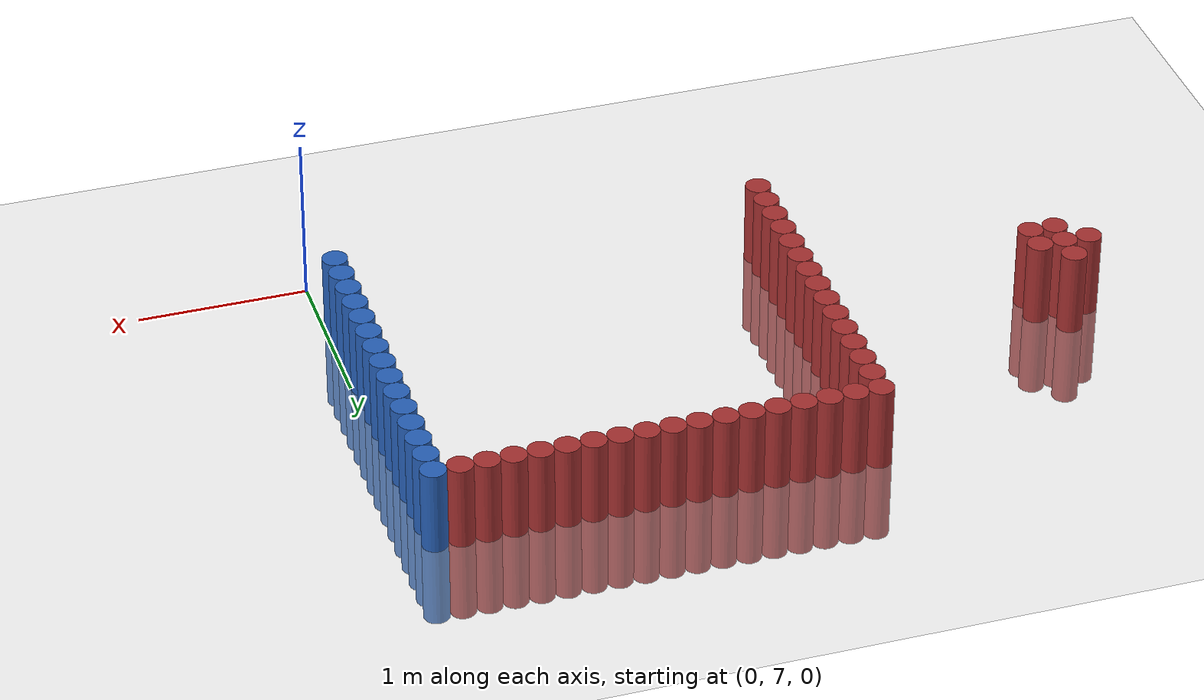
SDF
<sdf version="1.6">
 <world name="default">
  <model name="ground_plane">
   <static>1</static>
   <link name="link">
    <collision name="collision">
     <geometry><plane><normal>0 0 1</normal><size>100 100</size></plane></geometry>
     <surface><friction><ode><mu>100</mu><mu2>50</mu2></ode></friction></surface>
    </collision>
    <visual name="visual">
     <cast_shadows>0</cast_shadows>
     <geometry><plane><normal>0 0 1</normal><size>100 100</size></plane></geometry>
     <material>
      <script><uri>file://media/materials/scripts/gazebo.material</uri><name>Gazebo/Grey</name></script>
     </material>
    </visual>
   </link>
  </model>
  <model name="unit_cylinder_254">
   <static>1</static>
   <pose>-4.275000 8.475000 0.000000 0.000000 0.000000 0.000000</pose>
   <link name="link">
    <inertial>
     <mass>1</mass>
     <inertia><ixx>0.145833</ixx><ixy>0</ixy><ixz>0</ixz><iyy>0.145833</iyy><iyz>0</iyz><izz>0.125</izz></inertia>
    </inertial>
    <collision name="collision">
     <geometry><cylinder><radius>0.075000</radius><length>1</length></cylinder></geometry>
    </collision>
    <visual name="visual">
     <geometry><cylinder><radius>0.075000</radius><length>1</length></cylinder></geometry>
     <material>
      <ambient>0.648000 0.192000 0.192000 1</ambient>
      <diffuse>0.648000 0.192000 0.192000 1</diffuse>
     </material>
     <material>
      <script><name>Gazebo/Grey</name><uri>file://media/materials/scripts/gazebo.material</uri></script>
     </material>
    </visual>
   </link>
  </model>
  <model name="unit_cylinder_257">
   <static>1</static>
   <pose>-4.125000 8.325000 0.000000 0.000000 0.000000 0.000000</pose>
   <link name="link">
    <inertial>
     <mass>1</mass>
     <inertia><ixx>0.145833</ixx><ixy>0</ixy><ixz>0</ixz><iyy>0.145833</iyy><iyz>0</iyz><izz>0.125</izz></inertia>
    </inertial>
    <collision name="collision">
     <geometry><cylinder><radius>0.075000</radius><length>1</length></cylinder></geometry>
    </collision>
    <visual name="visual">
     <geometry><cylinder><radius>0.075000</radius><length>1</length></cylinder></geometry>
     <material>
      <ambient>0.648000 0.192000 0.192000 1</ambient>
      <diffuse>0.648000 0.192000 0.192000 1</diffuse>
     </material>
     <material>
      <script><name>Gazebo/Grey</name><uri>file://media/materials/scripts/gazebo.material</uri></script>
     </material>
    </visual>
   </link>
  </model>
  <model name="unit_cylinder_258">
   <static>1</static>
   <pose>-4.125000 8.475000 0.000000 0.000000 0.000000 0.000000</pose>
   <link name="link">
    <inertial>
     <mass>1</mass>
     <inertia><ixx>0.145833</ixx><ixy>0</ixy><ixz>0</ixz><iyy>0.145833</iyy><iyz>0</iyz><izz>0.125</izz></inertia>
    </inertial>
    <collision name="collision">
     <geometry><cylinder><radius>0.075000</radius><length>1</length></cylinder></geometry>
    </collision>
    <visual name="visual">
     <geometry><cylinder><radius>0.075000</radius><length>1</length></cylinder></geometry>
     <material>
      <ambient>0.648000 0.192000 0.192000 1</ambient>
      <diffuse>0.648000 0.192000 0.192000 1</diffuse>
     </material>
     <material>
      <script><name>Gazebo/Grey</name><uri>file://media/materials/scripts/gazebo.material</uri></script>
     </material>
    </visual>
   </link>
  </model>
  <model name="unit_cylinder_259">
   <static>1</static>
   <pose>-4.125000 8.625000 0.000000 0.000000 0.000000 0.000000</pose>
   <link name="link">
    <inertial>
     <mass>1</mass>
     <inertia><ixx>0.145833</ixx><ixy>0</ixy><ixz>0</ixz><iyy>0.145833</iyy><iyz>0</iyz><izz>0.125</izz></inertia>
    </inertial>
    <collision name="collision">
     <geometry><cylinder><radius>0.075000</radius><length>1</length></cylinder></geometry>
    </collision>
    <visual name="visual">
     <geometry><cylinder><radius>0.075000</radius><length>1</length></cylinder></geometry>
     <material>
      <ambient>0.648000 0.192000 0.192000 1</ambient>
      <diffuse>0.648000 0.192000 0.192000 1</diffuse>
     </material>
     <material>
      <script><name>Gazebo/Grey</name><uri>file://media/materials/scripts/gazebo.material</uri></script>
     </material>
    </visual>
   </link>
  </model>
  <model name="unit_cylinder_262">
   <static>1</static>
   <pose>-3.975000 8.325000 0.000000 0.000000 0.000000 0.000000</pose>
   <link name="link">
    <inertial>
     <mass>1</mass>
     <inertia><ixx>0.145833</ixx><ixy>0</ixy><ixz>0</ixz><iyy>0.145833</iyy><iyz>0</iyz><izz>0.125</izz></inertia>
    </inertial>
    <collision name="collision">
     <geometry><cylinder><radius>0.075000</radius><length>1</length></cylinder></geometry>
    </collision>
    <visual name="visual">
     <geometry><cylinder><radius>0.075000</radius><length>1</length></cylinder></geometry>
     <material>
      <ambient>0.648000 0.192000 0.192000 1</ambient>
      <diffuse>0.648000 0.192000 0.192000 1</diffuse>
     </material>
     <material>
      <script><name>Gazebo/Grey</name><uri>file://media/materials/scripts/gazebo.material</uri></script>
     </material>
    </visual>
   </link>
  </model>
  <model name="unit_cylinder_263">
   <static>1</static>
   <pose>-3.975000 8.475000 0.000000 0.000000 0.000000 0.000000</pose>
   <link name="link">
    <inertial>
     <mass>1</mass>
     <inertia><ixx>0.145833</ixx><ixy>0</ixy><ixz>0</ixz><iyy>0.145833</iyy><iyz>0</iyz><izz>0.125</izz></inertia>
    </inertial>
    <collision name="collision">
     <geometry><cylinder><radius>0.075000</radius><length>1</length></cylinder></geometry>
    </collision>
    <visual name="visual">
     <geometry><cylinder><radius>0.075000</radius><length>1</length></cylinder></geometry>
     <material>
      <ambient>0.648000 0.192000 0.192000 1</ambient>
      <diffuse>0.648000 0.192000 0.192000 1</diffuse>
     </material>
     <material>
      <script><name>Gazebo/Grey</name><uri>file://media/materials/scripts/gazebo.material</uri></script>
     </material>
    </visual>
   </link>
  </model>
  <model name="unit_cylinder_274">
   <static>1</static>
   <pose>-2.625000 7.425000 0.000000 0.000000 0.000000 0.000000</pose>
   <link name="link">
    <inertial>
     <mass>1</mass>
     <inertia><ixx>0.145833</ixx><ixy>0</ixy><ixz>0</ixz><iyy>0.145833</iyy><iyz>0</iyz><izz>0.125</izz></inertia>
    </inertial>
    <collision name="collision">
     <geometry><cylinder><radius>0.075000</radius><length>1</length></cylinder></geometry>
    </collision>
    <visual name="visual">
     <geometry><cylinder><radius>0.075000</radius><length>1</length></cylinder></geometry>
     <material>
      <ambient>0.648000 0.192000 0.192000 1</ambient>
      <diffuse>0.648000 0.192000 0.192000 1</diffuse>
     </material>
     <material>
      <script><name>Gazebo/Grey</name><uri>file://media/materials/scripts/gazebo.material</uri></script>
     </material>
    </visual>
   </link>
  </model>
  <model name="unit_cylinder_275">
   <static>1</static>
   <pose>-2.625000 7.575000 0.000000 0.000000 0.000000 0.000000</pose>
   <link name="link">
    <inertial>
     <mass>1</mass>
     <inertia><ixx>0.145833</ixx><ixy>0</ixy><ixz>0</ixz><iyy>0.145833</iyy><iyz>0</iyz><izz>0.125</izz></inertia>
    </inertial>
    <collision name="collision">
     <geometry><cylinder><radius>0.075000</radius><length>1</length></cylinder></geometry>
    </collision>
    <visual name="visual">
     <geometry><cylinder><radius>0.075000</radius><length>1</length></cylinder></geometry>
     <material>
      <ambient>0.648000 0.192000 0.192000 1</ambient>
      <diffuse>0.648000 0.192000 0.192000 1</diffuse>
     </material>
     <material>
      <script><name>Gazebo/Grey</name><uri>file://media/materials/scripts/gazebo.material</uri></script>
     </material>
    </visual>
   </link>
  </model>
  <model name="unit_cylinder_276">
   <static>1</static>
   <pose>-2.625000 7.725000 0.000000 0.000000 0.000000 0.000000</pose>
   <link name="link">
    <inertial>
     <mass>1</mass>
     <inertia><ixx>0.145833</ixx><ixy>0</ixy><ixz>0</ixz><iyy>0.145833</iyy><iyz>0</iyz><izz>0.125</izz></inertia>
    </inertial>
    <collision name="collision">
     <geometry><cylinder><radius>0.075000</radius><length>1</length></cylinder></geometry>
    </collision>
    <visual name="visual">
     <geometry><cylinder><radius>0.075000</radius><length>1</length></cylinder></geometry>
     <material>
      <ambient>0.648000 0.192000 0.192000 1</ambient>
      <diffuse>0.648000 0.192000 0.192000 1</diffuse>
     </material>
     <material>
      <script><name>Gazebo/Grey</name><uri>file://media/materials/scripts/gazebo.material</uri></script>
     </material>
    </visual>
   </link>
  </model>
  <model name="unit_cylinder_277">
   <static>1</static>
   <pose>-2.625000 7.875000 0.000000 0.000000 0.000000 0.000000</pose>
   <link name="link">
    <inertial>
     <mass>1</mass>
     <inertia><ixx>0.145833</ixx><ixy>0</ixy><ixz>0</ixz><iyy>0.145833</iyy><iyz>0</iyz><izz>0.125</izz></inertia>
    </inertial>
    <collision name="collision">
     <geometry><cylinder><radius>0.075000</radius><length>1</length></cylinder></geometry>
    </collision>
    <visual name="visual">
     <geometry><cylinder><radius>0.075000</radius><length>1</length></cylinder></geometry>
     <material>
      <ambient>0.648000 0.192000 0.192000 1</ambient>
      <diffuse>0.648000 0.192000 0.192000 1</diffuse>
     </material>
     <material>
      <script><name>Gazebo/Grey</name><uri>file://media/materials/scripts/gazebo.material</uri></script>
     </material>
    </visual>
   </link>
  </model>
  <model name="unit_cylinder_278">
   <static>1</static>
   <pose>-2.625000 8.025000 0.000000 0.000000 0.000000 0.000000</pose>
   <link name="link">
    <inertial>
     <mass>1</mass>
     <inertia><ixx>0.145833</ixx><ixy>0</ixy><ixz>0</ixz><iyy>0.145833</iyy><iyz>0</iyz><izz>0.125</izz></inertia>
    </inertial>
    <collision name="collision">
     <geometry><cylinder><radius>0.075000</radius><length>1</length></cylinder></geometry>
    </collision>
    <visual name="visual">
     <geometry><cylinder><radius>0.075000</radius><length>1</length></cylinder></geometry>
     <material>
      <ambient>0.648000 0.192000 0.192000 1</ambient>
      <diffuse>0.648000 0.192000 0.192000 1</diffuse>
     </material>
     <material>
      <script><name>Gazebo/Grey</name><uri>file://media/materials/scripts/gazebo.material</uri></script>
     </material>
    </visual>
   </link>
  </model>
  <model name="unit_cylinder_279">
   <static>1</static>
   <pose>-2.625000 8.175000 0.000000 0.000000 0.000000 0.000000</pose>
   <link name="link">
    <inertial>
     <mass>1</mass>
     <inertia><ixx>0.145833</ixx><ixy>0</ixy><ixz>0</ixz><iyy>0.145833</iyy><iyz>0</iyz><izz>0.125</izz></inertia>
    </inertial>
    <collision name="collision">
     <geometry><cylinder><radius>0.075000</radius><length>1</length></cylinder></geometry>
    </collision>
    <visual name="visual">
     <geometry><cylinder><radius>0.075000</radius><length>1</length></cylinder></geometry>
     <material>
      <ambient>0.648000 0.192000 0.192000 1</ambient>
      <diffuse>0.648000 0.192000 0.192000 1</diffuse>
     </material>
     <material>
      <script><name>Gazebo/Grey</name><uri>file://media/materials/scripts/gazebo.material</uri></script>
     </material>
    </visual>
   </link>
  </model>
  <model name="unit_cylinder_280">
   <static>1</static>
   <pose>-2.625000 8.325000 0.000000 0.000000 0.000000 0.000000</pose>
   <link name="link">
    <inertial>
     <mass>1</mass>
     <inertia><ixx>0.145833</ixx><ixy>0</ixy><ixz>0</ixz><iyy>0.145833</iyy><iyz>0</iyz><izz>0.125</izz></inertia>
    </inertial>
    <collision name="collision">
     <geometry><cylinder><radius>0.075000</radius><length>1</length></cylinder></geometry>
    </collision>
    <visual name="visual">
     <geometry><cylinder><radius>0.075000</radius><length>1</length></cylinder></geometry>
     <material>
      <ambient>0.648000 0.192000 0.192000 1</ambient>
      <diffuse>0.648000 0.192000 0.192000 1</diffuse>
     </material>
     <material>
      <script><name>Gazebo/Grey</name><uri>file://media/materials/scripts/gazebo.material</uri></script>
     </material>
    </visual>
   </link>
  </model>
  <model name="unit_cylinder_281">
   <static>1</static>
   <pose>-2.625000 8.475000 0.000000 0.000000 0.000000 0.000000</pose>
   <link name="link">
    <inertial>
     <mass>1</mass>
     <inertia><ixx>0.145833</ixx><ixy>0</ixy><ixz>0</ixz><iyy>0.145833</iyy><iyz>0</iyz><izz>0.125</izz></inertia>
    </inertial>
    <collision name="collision">
     <geometry><cylinder><radius>0.075000</radius><length>1</length></cylinder></geometry>
    </collision>
    <visual name="visual">
     <geometry><cylinder><radius>0.075000</radius><length>1</length></cylinder></geometry>
     <material>
      <ambient>0.648000 0.192000 0.192000 1</ambient>
      <diffuse>0.648000 0.192000 0.192000 1</diffuse>
     </material>
     <material>
      <script><name>Gazebo/Grey</name><uri>file://media/materials/scripts/gazebo.material</uri></script>
     </material>
    </visual>
   </link>
  </model>
  <model name="unit_cylinder_282">
   <static>1</static>
   <pose>-2.625000 8.625000 0.000000 0.000000 0.000000 0.000000</pose>
   <link name="link">
    <inertial>
     <mass>1</mass>
     <inertia><ixx>0.145833</ixx><ixy>0</ixy><ixz>0</ixz><iyy>0.145833</iyy><iyz>0</iyz><izz>0.125</izz></inertia>
    </inertial>
    <collision name="collision">
     <geometry><cylinder><radius>0.075000</radius><length>1</length></cylinder></geometry>
    </collision>
    <visual name="visual">
     <geometry><cylinder><radius>0.075000</radius><length>1</length></cylinder></geometry>
     <material>
      <ambient>0.648000 0.192000 0.192000 1</ambient>
      <diffuse>0.648000 0.192000 0.192000 1</diffuse>
     </material>
     <material>
      <script><name>Gazebo/Grey</name><uri>file://media/materials/scripts/gazebo.material</uri></script>
     </material>
    </visual>
   </link>
  </model>
  <model name="unit_cylinder_283">
   <static>1</static>
   <pose>-2.625000 8.775000 0.000000 0.000000 0.000000 0.000000</pose>
   <link name="link">
    <inertial>
     <mass>1</mass>
     <inertia><ixx>0.145833</ixx><ixy>0</ixy><ixz>0</ixz><iyy>0.145833</iyy><iyz>0</iyz><izz>0.125</izz></inertia>
    </inertial>
    <collision name="collision">
     <geometry><cylinder><radius>0.075000</radius><length>1</length></cylinder></geometry>
    </collision>
    <visual name="visual">
     <geometry><cylinder><radius>0.075000</radius><length>1</length></cylinder></geometry>
     <material>
      <ambient>0.648000 0.192000 0.192000 1</ambient>
      <diffuse>0.648000 0.192000 0.192000 1</diffuse>
     </material>
     <material>
      <script><name>Gazebo/Grey</name><uri>file://media/materials/scripts/gazebo.material</uri></script>
     </material>
    </visual>
   </link>
  </model>
  <model name="unit_cylinder_284">
   <static>1</static>
   <pose>-2.625000 8.925000 0.000000 0.000000 0.000000 0.000000</pose>
   <link name="link">
    <inertial>
     <mass>1</mass>
     <inertia><ixx>0.145833</ixx><ixy>0</ixy><ixz>0</ixz><iyy>0.145833</iyy><iyz>0</iyz><izz>0.125</izz></inertia>
    </inertial>
    <collision name="collision">
     <geometry><cylinder><radius>0.075000</radius><length>1</length></cylinder></geometry>
    </collision>
    <visual name="visual">
     <geometry><cylinder><radius>0.075000</radius><length>1</length></cylinder></geometry>
     <material>
      <ambient>0.648000 0.192000 0.192000 1</ambient>
      <diffuse>0.648000 0.192000 0.192000 1</diffuse>
     </material>
     <material>
      <script><name>Gazebo/Grey</name><uri>file://media/materials/scripts/gazebo.material</uri></script>
     </material>
    </visual>
   </link>
  </model>
  <model name="unit_cylinder_285">
   <static>1</static>
   <pose>-2.625000 9.075000 0.000000 0.000000 0.000000 0.000000</pose>
   <link name="link">
    <inertial>
     <mass>1</mass>
     <inertia><ixx>0.145833</ixx><ixy>0</ixy><ixz>0</ixz><iyy>0.145833</iyy><iyz>0</iyz><izz>0.125</izz></inertia>
    </inertial>
    <collision name="collision">
     <geometry><cylinder><radius>0.075000</radius><length>1</length></cylinder></geometry>
    </collision>
    <visual name="visual">
     <geometry><cylinder><radius>0.075000</radius><length>1</length></cylinder></geometry>
     <material>
      <ambient>0.648000 0.192000 0.192000 1</ambient>
      <diffuse>0.648000 0.192000 0.192000 1</diffuse>
     </material>
     <material>
      <script><name>Gazebo/Grey</name><uri>file://media/materials/scripts/gazebo.material</uri></script>
     </material>
    </visual>
   </link>
  </model>
  <model name="unit_cylinder_286">
   <static>1</static>
   <pose>-2.625000 9.225000 0.000000 0.000000 0.000000 0.000000</pose>
   <link name="link">
    <inertial>
     <mass>1</mass>
     <inertia><ixx>0.145833</ixx><ixy>0</ixy><ixz>0</ixz><iyy>0.145833</iyy><iyz>0</iyz><izz>0.125</izz></inertia>
    </inertial>
    <collision name="collision">
     <geometry><cylinder><radius>0.075000</radius><length>1</length></cylinder></geometry>
    </collision>
    <visual name="visual">
     <geometry><cylinder><radius>0.075000</radius><length>1</length></cylinder></geometry>
     <material>
      <ambient>0.648000 0.192000 0.192000 1</ambient>
      <diffuse>0.648000 0.192000 0.192000 1</diffuse>
     </material>
     <material>
      <script><name>Gazebo/Grey</name><uri>file://media/materials/scripts/gazebo.material</uri></script>
     </material>
    </visual>
   </link>
  </model>
  <model name="unit_cylinder_287">
   <static>1</static>
   <pose>-2.625000 9.375000 0.000000 0.000000 0.000000 0.000000</pose>
   <link name="link">
    <inertial>
     <mass>1</mass>
     <inertia><ixx>0.145833</ixx><ixy>0</ixy><ixz>0</ixz><iyy>0.145833</iyy><iyz>0</iyz><izz>0.125</izz></inertia>
    </inertial>
    <collision name="collision">
     <geometry><cylinder><radius>0.075000</radius><length>1</length></cylinder></geometry>
    </collision>
    <visual name="visual">
     <geometry><cylinder><radius>0.075000</radius><length>1</length></cylinder></geometry>
     <material>
      <ambient>0.648000 0.192000 0.192000 1</ambient>
      <diffuse>0.648000 0.192000 0.192000 1</diffuse>
     </material>
     <material>
      <script><name>Gazebo/Grey</name><uri>file://media/materials/scripts/gazebo.material</uri></script>
     </material>
    </visual>
   </link>
  </model>
  <model name="unit_cylinder_288">
   <static>1</static>
   <pose>-2.625000 9.525000 0.000000 0.000000 0.000000 0.000000</pose>
   <link name="link">
    <inertial>
     <mass>1</mass>
     <inertia><ixx>0.145833</ixx><ixy>0</ixy><ixz>0</ixz><iyy>0.145833</iyy><iyz>0</iyz><izz>0.125</izz></inertia>
    </inertial>
    <collision name="collision">
     <geometry><cylinder><radius>0.075000</radius><length>1</length></cylinder></geometry>
    </collision>
    <visual name="visual">
     <geometry><cylinder><radius>0.075000</radius><length>1</length></cylinder></geometry>
     <material>
      <ambient>0.648000 0.192000 0.192000 1</ambient>
      <diffuse>0.648000 0.192000 0.192000 1</diffuse>
     </material>
     <material>
      <script><name>Gazebo/Grey</name><uri>file://media/materials/scripts/gazebo.material</uri></script>
     </material>
    </visual>
   </link>
  </model>
  <model name="unit_cylinder_290">
   <static>1</static>
   <pose>-2.475000 9.525000 0.000000 0.000000 0.000000 0.000000</pose>
   <link name="link">
    <inertial>
     <mass>1</mass>
     <inertia><ixx>0.145833</ixx><ixy>0</ixy><ixz>0</ixz><iyy>0.145833</iyy><iyz>0</iyz><izz>0.125</izz></inertia>
    </inertial>
    <collision name="collision">
     <geometry><cylinder><radius>0.075000</radius><length>1</length></cylinder></geometry>
    </collision>
    <visual name="visual">
     <geometry><cylinder><radius>0.075000</radius><length>1</length></cylinder></geometry>
     <material>
      <ambient>0.648000 0.192000 0.192000 1</ambient>
      <diffuse>0.648000 0.192000 0.192000 1</diffuse>
     </material>
     <material>
      <script><name>Gazebo/Grey</name><uri>file://media/materials/scripts/gazebo.material</uri></script>
     </material>
    </visual>
   </link>
  </model>
  <model name="unit_cylinder_303">
   <static>1</static>
   <pose>-2.325000 9.525000 0.000000 0.000000 0.000000 0.000000</pose>
   <link name="link">
    <inertial>
     <mass>1</mass>
     <inertia><ixx>0.145833</ixx><ixy>0</ixy><ixz>0</ixz><iyy>0.145833</iyy><iyz>0</iyz><izz>0.125</izz></inertia>
    </inertial>
    <collision name="collision">
     <geometry><cylinder><radius>0.075000</radius><length>1</length></cylinder></geometry>
    </collision>
    <visual name="visual">
     <geometry><cylinder><radius>0.075000</radius><length>1</length></cylinder></geometry>
     <material>
      <ambient>0.648000 0.192000 0.192000 1</ambient>
      <diffuse>0.648000 0.192000 0.192000 1</diffuse>
     </material>
     <material>
      <script><name>Gazebo/Grey</name><uri>file://media/materials/scripts/gazebo.material</uri></script>
     </material>
    </visual>
   </link>
  </model>
  <model name="unit_cylinder_305">
   <static>1</static>
   <pose>-2.175000 9.525000 0.000000 0.000000 0.000000 0.000000</pose>
   <link name="link">
    <inertial>
     <mass>1</mass>
     <inertia><ixx>0.145833</ixx><ixy>0</ixy><ixz>0</ixz><iyy>0.145833</iyy><iyz>0</iyz><izz>0.125</izz></inertia>
    </inertial>
    <collision name="collision">
     <geometry><cylinder><radius>0.075000</radius><length>1</length></cylinder></geometry>
    </collision>
    <visual name="visual">
     <geometry><cylinder><radius>0.075000</radius><length>1</length></cylinder></geometry>
     <material>
      <ambient>0.648000 0.192000 0.192000 1</ambient>
      <diffuse>0.648000 0.192000 0.192000 1</diffuse>
     </material>
     <material>
      <script><name>Gazebo/Grey</name><uri>file://media/materials/scripts/gazebo.material</uri></script>
     </material>
    </visual>
   </link>
  </model>
  <model name="unit_cylinder_307">
   <static>1</static>
   <pose>-2.025000 9.525000 0.000000 0.000000 0.000000 0.000000</pose>
   <link name="link">
    <inertial>
     <mass>1</mass>
     <inertia><ixx>0.145833</ixx><ixy>0</ixy><ixz>0</ixz><iyy>0.145833</iyy><iyz>0</iyz><izz>0.125</izz></inertia>
    </inertial>
    <collision name="collision">
     <geometry><cylinder><radius>0.075000</radius><length>1</length></cylinder></geometry>
    </collision>
    <visual name="visual">
     <geometry><cylinder><radius>0.075000</radius><length>1</length></cylinder></geometry>
     <material>
      <ambient>0.648000 0.192000 0.192000 1</ambient>
      <diffuse>0.648000 0.192000 0.192000 1</diffuse>
     </material>
     <material>
      <script><name>Gazebo/Grey</name><uri>file://media/materials/scripts/gazebo.material</uri></script>
     </material>
    </visual>
   </link>
  </model>
  <model name="unit_cylinder_309">
   <static>1</static>
   <pose>-1.875000 9.525000 0.000000 0.000000 0.000000 0.000000</pose>
   <link name="link">
    <inertial>
     <mass>1</mass>
     <inertia><ixx>0.145833</ixx><ixy>0</ixy><ixz>0</ixz><iyy>0.145833</iyy><iyz>0</iyz><izz>0.125</izz></inertia>
    </inertial>
    <collision name="collision">
     <geometry><cylinder><radius>0.075000</radius><length>1</length></cylinder></geometry>
    </collision>
    <visual name="visual">
     <geometry><cylinder><radius>0.075000</radius><length>1</length></cylinder></geometry>
     <material>
      <ambient>0.648000 0.192000 0.192000 1</ambient>
      <diffuse>0.648000 0.192000 0.192000 1</diffuse>
     </material>
     <material>
      <script><name>Gazebo/Grey</name><uri>file://media/materials/scripts/gazebo.material</uri></script>
     </material>
    </visual>
   </link>
  </model>
  <model name="unit_cylinder_311">
   <static>1</static>
   <pose>-1.725000 9.525000 0.000000 0.000000 0.000000 0.000000</pose>
   <link name="link">
    <inertial>
     <mass>1</mass>
     <inertia><ixx>0.145833</ixx><ixy>0</ixy><ixz>0</ixz><iyy>0.145833</iyy><iyz>0</iyz><izz>0.125</izz></inertia>
    </inertial>
    <collision name="collision">
     <geometry><cylinder><radius>0.075000</radius><length>1</length></cylinder></geometry>
    </collision>
    <visual name="visual">
     <geometry><cylinder><radius>0.075000</radius><length>1</length></cylinder></geometry>
     <material>
      <ambient>0.648000 0.192000 0.192000 1</ambient>
      <diffuse>0.648000 0.192000 0.192000 1</diffuse>
     </material>
     <material>
      <script><name>Gazebo/Grey</name><uri>file://media/materials/scripts/gazebo.material</uri></script>
     </material>
    </visual>
   </link>
  </model>
  <model name="unit_cylinder_313">
   <static>1</static>
   <pose>-1.575000 9.525000 0.000000 0.000000 0.000000 0.000000</pose>
   <link name="link">
    <inertial>
     <mass>1</mass>
     <inertia><ixx>0.145833</ixx><ixy>0</ixy><ixz>0</ixz><iyy>0.145833</iyy><iyz>0</iyz><izz>0.125</izz></inertia>
    </inertial>
    <collision name="collision">
     <geometry><cylinder><radius>0.075000</radius><length>1</length></cylinder></geometry>
    </collision>
    <visual name="visual">
     <geometry><cylinder><radius>0.075000</radius><length>1</length></cylinder></geometry>
     <material>
      <ambient>0.648000 0.192000 0.192000 1</ambient>
      <diffuse>0.648000 0.192000 0.192000 1</diffuse>
     </material>
     <material>
      <script><name>Gazebo/Grey</name><uri>file://media/materials/scripts/gazebo.material</uri></script>
     </material>
    </visual>
   </link>
  </model>
  <model name="unit_cylinder_315">
   <static>1</static>
   <pose>-1.425000 9.525000 0.000000 0.000000 0.000000 0.000000</pose>
   <link name="link">
    <inertial>
     <mass>1</mass>
     <inertia><ixx>0.145833</ixx><ixy>0</ixy><ixz>0</ixz><iyy>0.145833</iyy><iyz>0</iyz><izz>0.125</izz></inertia>
    </inertial>
    <collision name="collision">
     <geometry><cylinder><radius>0.075000</radius><length>1</length></cylinder></geometry>
    </collision>
    <visual name="visual">
     <geometry><cylinder><radius>0.075000</radius><length>1</length></cylinder></geometry>
     <material>
      <ambient>0.648000 0.192000 0.192000 1</ambient>
      <diffuse>0.648000 0.192000 0.192000 1</diffuse>
     </material>
     <material>
      <script><name>Gazebo/Grey</name><uri>file://media/materials/scripts/gazebo.material</uri></script>
     </material>
    </visual>
   </link>
  </model>
  <model name="unit_cylinder_317">
   <static>1</static>
   <pose>-1.275000 9.525000 0.000000 0.000000 0.000000 0.000000</pose>
   <link name="link">
    <inertial>
     <mass>1</mass>
     <inertia><ixx>0.145833</ixx><ixy>0</ixy><ixz>0</ixz><iyy>0.145833</iyy><iyz>0</iyz><izz>0.125</izz></inertia>
    </inertial>
    <collision name="collision">
     <geometry><cylinder><radius>0.075000</radius><length>1</length></cylinder></geometry>
    </collision>
    <visual name="visual">
     <geometry><cylinder><radius>0.075000</radius><length>1</length></cylinder></geometry>
     <material>
      <ambient>0.648000 0.192000 0.192000 1</ambient>
      <diffuse>0.648000 0.192000 0.192000 1</diffuse>
     </material>
     <material>
      <script><name>Gazebo/Grey</name><uri>file://media/materials/scripts/gazebo.material</uri></script>
     </material>
    </visual>
   </link>
  </model>
  <model name="unit_cylinder_319">
   <static>1</static>
   <pose>-1.125000 9.525000 0.000000 0.000000 0.000000 0.000000</pose>
   <link name="link">
    <inertial>
     <mass>1</mass>
     <inertia><ixx>0.145833</ixx><ixy>0</ixy><ixz>0</ixz><iyy>0.145833</iyy><iyz>0</iyz><izz>0.125</izz></inertia>
    </inertial>
    <collision name="collision">
     <geometry><cylinder><radius>0.075000</radius><length>1</length></cylinder></geometry>
    </collision>
    <visual name="visual">
     <geometry><cylinder><radius>0.075000</radius><length>1</length></cylinder></geometry>
     <material>
      <ambient>0.648000 0.192000 0.192000 1</ambient>
      <diffuse>0.648000 0.192000 0.192000 1</diffuse>
     </material>
     <material>
      <script><name>Gazebo/Grey</name><uri>file://media/materials/scripts/gazebo.material</uri></script>
     </material>
    </visual>
   </link>
  </model>
  <model name="unit_cylinder_321">
   <static>1</static>
   <pose>-0.975000 9.525000 0.000000 0.000000 0.000000 0.000000</pose>
   <link name="link">
    <inertial>
     <mass>1</mass>
     <inertia><ixx>0.145833</ixx><ixy>0</ixy><ixz>0</ixz><iyy>0.145833</iyy><iyz>0</iyz><izz>0.125</izz></inertia>
    </inertial>
    <collision name="collision">
     <geometry><cylinder><radius>0.075000</radius><length>1</length></cylinder></geometry>
    </collision>
    <visual name="visual">
     <geometry><cylinder><radius>0.075000</radius><length>1</length></cylinder></geometry>
     <material>
      <ambient>0.648000 0.192000 0.192000 1</ambient>
      <diffuse>0.648000 0.192000 0.192000 1</diffuse>
     </material>
     <material>
      <script><name>Gazebo/Grey</name><uri>file://media/materials/scripts/gazebo.material</uri></script>
     </material>
    </visual>
   </link>
  </model>
  <model name="unit_cylinder_323">
   <static>1</static>
   <pose>-0.825000 9.525000 0.000000 0.000000 0.000000 0.000000</pose>
   <link name="link">
    <inertial>
     <mass>1</mass>
     <inertia><ixx>0.145833</ixx><ixy>0</ixy><ixz>0</ixz><iyy>0.145833</iyy><iyz>0</iyz><izz>0.125</izz></inertia>
    </inertial>
    <collision name="collision">
     <geometry><cylinder><radius>0.075000</radius><length>1</length></cylinder></geometry>
    </collision>
    <visual name="visual">
     <geometry><cylinder><radius>0.075000</radius><length>1</length></cylinder></geometry>
     <material>
      <ambient>0.648000 0.192000 0.192000 1</ambient>
      <diffuse>0.648000 0.192000 0.192000 1</diffuse>
     </material>
     <material>
      <script><name>Gazebo/Grey</name><uri>file://media/materials/scripts/gazebo.material</uri></script>
     </material>
    </visual>
   </link>
  </model>
  <model name="unit_cylinder_325">
   <static>1</static>
   <pose>-0.675000 9.525000 0.000000 0.000000 0.000000 0.000000</pose>
   <link name="link">
    <inertial>
     <mass>1</mass>
     <inertia><ixx>0.145833</ixx><ixy>0</ixy><ixz>0</ixz><iyy>0.145833</iyy><iyz>0</iyz><izz>0.125</izz></inertia>
    </inertial>
    <collision name="collision">
     <geometry><cylinder><radius>0.075000</radius><length>1</length></cylinder></geometry>
    </collision>
    <visual name="visual">
     <geometry><cylinder><radius>0.075000</radius><length>1</length></cylinder></geometry>
     <material>
      <ambient>0.648000 0.192000 0.192000 1</ambient>
      <diffuse>0.648000 0.192000 0.192000 1</diffuse>
     </material>
     <material>
      <script><name>Gazebo/Grey</name><uri>file://media/materials/scripts/gazebo.material</uri></script>
     </material>
    </visual>
   </link>
  </model>
  <model name="unit_cylinder_327">
   <static>1</static>
   <pose>-0.525000 9.525000 0.000000 0.000000 0.000000 0.000000</pose>
   <link name="link">
    <inertial>
     <mass>1</mass>
     <inertia><ixx>0.145833</ixx><ixy>0</ixy><ixz>0</ixz><iyy>0.145833</iyy><iyz>0</iyz><izz>0.125</izz></inertia>
    </inertial>
    <collision name="collision">
     <geometry><cylinder><radius>0.075000</radius><length>1</length></cylinder></geometry>
    </collision>
    <visual name="visual">
     <geometry><cylinder><radius>0.075000</radius><length>1</length></cylinder></geometry>
     <material>
      <ambient>0.648000 0.192000 0.192000 1</ambient>
      <diffuse>0.648000 0.192000 0.192000 1</diffuse>
     </material>
     <material>
      <script><name>Gazebo/Grey</name><uri>file://media/materials/scripts/gazebo.material</uri></script>
     </material>
    </visual>
   </link>
  </model>
  <model name="unit_cylinder_329">
   <static>1</static>
   <pose>-0.375000 9.525000 0.000000 0.000000 0.000000 0.000000</pose>
   <link name="link">
    <inertial>
     <mass>1</mass>
     <inertia><ixx>0.145833</ixx><ixy>0</ixy><ixz>0</ixz><iyy>0.145833</iyy><iyz>0</iyz><izz>0.125</izz></inertia>
    </inertial>
    <collision name="collision">
     <geometry><cylinder><radius>0.075000</radius><length>1</length></cylinder></geometry>
    </collision>
    <visual name="visual">
     <geometry><cylinder><radius>0.075000</radius><length>1</length></cylinder></geometry>
     <material>
      <ambient>0.648000 0.192000 0.192000 1</ambient>
      <diffuse>0.648000 0.192000 0.192000 1</diffuse>
     </material>
     <material>
      <script><name>Gazebo/Grey</name><uri>file://media/materials/scripts/gazebo.material</uri></script>
     </material>
    </visual>
   </link>
  </model>
  <model name="unit_cylinder_331">
   <static>1</static>
   <pose>-0.225000 9.525000 0.000000 0.000000 0.000000 0.000000</pose>
   <link name="link">
    <inertial>
     <mass>1</mass>
     <inertia><ixx>0.145833</ixx><ixy>0</ixy><ixz>0</ixz><iyy>0.145833</iyy><iyz>0</iyz><izz>0.125</izz></inertia>
    </inertial>
    <collision name="collision">
     <geometry><cylinder><radius>0.075000</radius><length>1</length></cylinder></geometry>
    </collision>
    <visual name="visual">
     <geometry><cylinder><radius>0.075000</radius><length>1</length></cylinder></geometry>
     <material>
      <ambient>0.648000 0.192000 0.192000 1</ambient>
      <diffuse>0.648000 0.192000 0.192000 1</diffuse>
     </material>
     <material>
      <script><name>Gazebo/Grey</name><uri>file://media/materials/scripts/gazebo.material</uri></script>
     </material>
    </visual>
   </link>
  </model>
  <model name="unit_cylinder_347">
   <static>1</static>
   <pose>-0.075000 7.425000 0.000000 0.000000 0.000000 0.000000</pose>
   <link name="link">
    <inertial>
     <mass>1</mass>
     <inertia><ixx>0.145833</ixx><ixy>0</ixy><ixz>0</ixz><iyy>0.145833</iyy><iyz>0</iyz><izz>0.125</izz></inertia>
    </inertial>
    <collision name="collision">
     <geometry><cylinder><radius>0.075000</radius><length>1</length></cylinder></geometry>
    </collision>
    <visual name="visual">
     <geometry><cylinder><radius>0.075000</radius><length>1</length></cylinder></geometry>
     <material>
      <ambient>0.152000 0.379000 0.720000 1</ambient>
      <diffuse>0.152000 0.379000 0.720000 1</diffuse>
     </material>
     <material>
      <script><name>Gazebo/Grey</name><uri>file://media/materials/scripts/gazebo.material</uri></script>
     </material>
    </visual>
   </link>
  </model>
  <model name="unit_cylinder_348">
   <static>1</static>
   <pose>-0.075000 7.575000 0.000000 0.000000 0.000000 0.000000</pose>
   <link name="link">
    <inertial>
     <mass>1</mass>
     <inertia><ixx>0.145833</ixx><ixy>0</ixy><ixz>0</ixz><iyy>0.145833</iyy><iyz>0</iyz><izz>0.125</izz></inertia>
    </inertial>
    <collision name="collision">
     <geometry><cylinder><radius>0.075000</radius><length>1</length></cylinder></geometry>
    </collision>
    <visual name="visual">
     <geometry><cylinder><radius>0.075000</radius><length>1</length></cylinder></geometry>
     <material>
      <ambient>0.152000 0.379000 0.720000 1</ambient>
      <diffuse>0.152000 0.379000 0.720000 1</diffuse>
     </material>
     <material>
      <script><name>Gazebo/Grey</name><uri>file://media/materials/scripts/gazebo.material</uri></script>
     </material>
    </visual>
   </link>
  </model>
  <model name="unit_cylinder_349">
   <static>1</static>
   <pose>-0.075000 7.725000 0.000000 0.000000 0.000000 0.000000</pose>
   <link name="link">
    <inertial>
     <mass>1</mass>
     <inertia><ixx>0.145833</ixx><ixy>0</ixy><ixz>0</ixz><iyy>0.145833</iyy><iyz>0</iyz><izz>0.125</izz></inertia>
    </inertial>
    <collision name="collision">
     <geometry><cylinder><radius>0.075000</radius><length>1</length></cylinder></geometry>
    </collision>
    <visual name="visual">
     <geometry><cylinder><radius>0.075000</radius><length>1</length></cylinder></geometry>
     <material>
      <ambient>0.152000 0.379000 0.720000 1</ambient>
      <diffuse>0.152000 0.379000 0.720000 1</diffuse>
     </material>
     <material>
      <script><name>Gazebo/Grey</name><uri>file://media/materials/scripts/gazebo.material</uri></script>
     </material>
    </visual>
   </link>
  </model>
  <model name="unit_cylinder_350">
   <static>1</static>
   <pose>-0.075000 7.875000 0.000000 0.000000 0.000000 0.000000</pose>
   <link name="link">
    <inertial>
     <mass>1</mass>
     <inertia><ixx>0.145833</ixx><ixy>0</ixy><ixz>0</ixz><iyy>0.145833</iyy><iyz>0</iyz><izz>0.125</izz></inertia>
    </inertial>
    <collision name="collision">
     <geometry><cylinder><radius>0.075000</radius><length>1</length></cylinder></geometry>
    </collision>
    <visual name="visual">
     <geometry><cylinder><radius>0.075000</radius><length>1</length></cylinder></geometry>
     <material>
      <ambient>0.152000 0.379000 0.720000 1</ambient>
      <diffuse>0.152000 0.379000 0.720000 1</diffuse>
     </material>
     <material>
      <script><name>Gazebo/Grey</name><uri>file://media/materials/scripts/gazebo.material</uri></script>
     </material>
    </visual>
   </link>
  </model>
  <model name="unit_cylinder_351">
   <static>1</static>
   <pose>-0.075000 8.025000 0.000000 0.000000 0.000000 0.000000</pose>
   <link name="link">
    <inertial>
     <mass>1</mass>
     <inertia><ixx>0.145833</ixx><ixy>0</ixy><ixz>0</ixz><iyy>0.145833</iyy><iyz>0</iyz><izz>0.125</izz></inertia>
    </inertial>
    <collision name="collision">
     <geometry><cylinder><radius>0.075000</radius><length>1</length></cylinder></geometry>
    </collision>
    <visual name="visual">
     <geometry><cylinder><radius>0.075000</radius><length>1</length></cylinder></geometry>
     <material>
      <ambient>0.152000 0.379000 0.720000 1</ambient>
      <diffuse>0.152000 0.379000 0.720000 1</diffuse>
     </material>
     <material>
      <script><name>Gazebo/Grey</name><uri>file://media/materials/scripts/gazebo.material</uri></script>
     </material>
    </visual>
   </link>
  </model>
  <model name="unit_cylinder_352">
   <static>1</static>
   <pose>-0.075000 8.175000 0.000000 0.000000 0.000000 0.000000</pose>
   <link name="link">
    <inertial>
     <mass>1</mass>
     <inertia><ixx>0.145833</ixx><ixy>0</ixy><ixz>0</ixz><iyy>0.145833</iyy><iyz>0</iyz><izz>0.125</izz></inertia>
    </inertial>
    <collision name="collision">
     <geometry><cylinder><radius>0.075000</radius><length>1</length></cylinder></geometry>
    </collision>
    <visual name="visual">
     <geometry><cylinder><radius>0.075000</radius><length>1</length></cylinder></geometry>
     <material>
      <ambient>0.152000 0.379000 0.720000 1</ambient>
      <diffuse>0.152000 0.379000 0.720000 1</diffuse>
     </material>
     <material>
      <script><name>Gazebo/Grey</name><uri>file://media/materials/scripts/gazebo.material</uri></script>
     </material>
    </visual>
   </link>
  </model>
  <model name="unit_cylinder_353">
   <static>1</static>
   <pose>-0.075000 8.325000 0.000000 0.000000 0.000000 0.000000</pose>
   <link name="link">
    <inertial>
     <mass>1</mass>
     <inertia><ixx>0.145833</ixx><ixy>0</ixy><ixz>0</ixz><iyy>0.145833</iyy><iyz>0</iyz><izz>0.125</izz></inertia>
    </inertial>
    <collision name="collision">
     <geometry><cylinder><radius>0.075000</radius><length>1</length></cylinder></geometry>
    </collision>
    <visual name="visual">
     <geometry><cylinder><radius>0.075000</radius><length>1</length></cylinder></geometry>
     <material>
      <ambient>0.152000 0.379000 0.720000 1</ambient>
      <diffuse>0.152000 0.379000 0.720000 1</diffuse>
     </material>
     <material>
      <script><name>Gazebo/Grey</name><uri>file://media/materials/scripts/gazebo.material</uri></script>
     </material>
    </visual>
   </link>
  </model>
  <model name="unit_cylinder_354">
   <static>1</static>
   <pose>-0.075000 8.475000 0.000000 0.000000 0.000000 0.000000</pose>
   <link name="link">
    <inertial>
     <mass>1</mass>
     <inertia><ixx>0.145833</ixx><ixy>0</ixy><ixz>0</ixz><iyy>0.145833</iyy><iyz>0</iyz><izz>0.125</izz></inertia>
    </inertial>
    <collision name="collision">
     <geometry><cylinder><radius>0.075000</radius><length>1</length></cylinder></geometry>
    </collision>
    <visual name="visual">
     <geometry><cylinder><radius>0.075000</radius><length>1</length></cylinder></geometry>
     <material>
      <ambient>0.152000 0.379000 0.720000 1</ambient>
      <diffuse>0.152000 0.379000 0.720000 1</diffuse>
     </material>
     <material>
      <script><name>Gazebo/Grey</name><uri>file://media/materials/scripts/gazebo.material</uri></script>
     </material>
    </visual>
   </link>
  </model>
  <model name="unit_cylinder_355">
   <static>1</static>
   <pose>-0.075000 8.625000 0.000000 0.000000 0.000000 0.000000</pose>
   <link name="link">
    <inertial>
     <mass>1</mass>
     <inertia><ixx>0.145833</ixx><ixy>0</ixy><ixz>0</ixz><iyy>0.145833</iyy><iyz>0</iyz><izz>0.125</izz></inertia>
    </inertial>
    <collision name="collision">
     <geometry><cylinder><radius>0.075000</radius><length>1</length></cylinder></geometry>
    </collision>
    <visual name="visual">
     <geometry><cylinder><radius>0.075000</radius><length>1</length></cylinder></geometry>
     <material>
      <ambient>0.152000 0.379000 0.720000 1</ambient>
      <diffuse>0.152000 0.379000 0.720000 1</diffuse>
     </material>
     <material>
      <script><name>Gazebo/Grey</name><uri>file://media/materials/scripts/gazebo.material</uri></script>
     </material>
    </visual>
   </link>
  </model>
  <model name="unit_cylinder_356">
   <static>1</static>
   <pose>-0.075000 8.775000 0.000000 0.000000 0.000000 0.000000</pose>
   <link name="link">
    <inertial>
     <mass>1</mass>
     <inertia><ixx>0.145833</ixx><ixy>0</ixy><ixz>0</ixz><iyy>0.145833</iyy><iyz>0</iyz><izz>0.125</izz></inertia>
    </inertial>
    <collision name="collision">
     <geometry><cylinder><radius>0.075000</radius><length>1</length></cylinder></geometry>
    </collision>
    <visual name="visual">
     <geometry><cylinder><radius>0.075000</radius><length>1</length></cylinder></geometry>
     <material>
      <ambient>0.152000 0.379000 0.720000 1</ambient>
      <diffuse>0.152000 0.379000 0.720000 1</diffuse>
     </material>
     <material>
      <script><name>Gazebo/Grey</name><uri>file://media/materials/scripts/gazebo.material</uri></script>
     </material>
    </visual>
   </link>
  </model>
  <model name="unit_cylinder_357">
   <static>1</static>
   <pose>-0.075000 8.925000 0.000000 0.000000 0.000000 0.000000</pose>
   <link name="link">
    <inertial>
     <mass>1</mass>
     <inertia><ixx>0.145833</ixx><ixy>0</ixy><ixz>0</ixz><iyy>0.145833</iyy><iyz>0</iyz><izz>0.125</izz></inertia>
    </inertial>
    <collision name="collision">
     <geometry><cylinder><radius>0.075000</radius><length>1</length></cylinder></geometry>
    </collision>
    <visual name="visual">
     <geometry><cylinder><radius>0.075000</radius><length>1</length></cylinder></geometry>
     <material>
      <ambient>0.152000 0.379000 0.720000 1</ambient>
      <diffuse>0.152000 0.379000 0.720000 1</diffuse>
     </material>
     <material>
      <script><name>Gazebo/Grey</name><uri>file://media/materials/scripts/gazebo.material</uri></script>
     </material>
    </visual>
   </link>
  </model>
  <model name="unit_cylinder_358">
   <static>1</static>
   <pose>-0.075000 9.075000 0.000000 0.000000 0.000000 0.000000</pose>
   <link name="link">
    <inertial>
     <mass>1</mass>
     <inertia><ixx>0.145833</ixx><ixy>0</ixy><ixz>0</ixz><iyy>0.145833</iyy><iyz>0</iyz><izz>0.125</izz></inertia>
    </inertial>
    <collision name="collision">
     <geometry><cylinder><radius>0.075000</radius><length>1</length></cylinder></geometry>
    </collision>
    <visual name="visual">
     <geometry><cylinder><radius>0.075000</radius><length>1</length></cylinder></geometry>
     <material>
      <ambient>0.152000 0.379000 0.720000 1</ambient>
      <diffuse>0.152000 0.379000 0.720000 1</diffuse>
     </material>
     <material>
      <script><name>Gazebo/Grey</name><uri>file://media/materials/scripts/gazebo.material</uri></script>
     </material>
    </visual>
   </link>
  </model>
  <model name="unit_cylinder_359">
   <static>1</static>
   <pose>-0.075000 9.225000 0.000000 0.000000 0.000000 0.000000</pose>
   <link name="link">
    <inertial>
     <mass>1</mass>
     <inertia><ixx>0.145833</ixx><ixy>0</ixy><ixz>0</ixz><iyy>0.145833</iyy><iyz>0</iyz><izz>0.125</izz></inertia>
    </inertial>
    <collision name="collision">
     <geometry><cylinder><radius>0.075000</radius><length>1</length></cylinder></geometry>
    </collision>
    <visual name="visual">
     <geometry><cylinder><radius>0.075000</radius><length>1</length></cylinder></geometry>
     <material>
      <ambient>0.152000 0.379000 0.720000 1</ambient>
      <diffuse>0.152000 0.379000 0.720000 1</diffuse>
     </material>
     <material>
      <script><name>Gazebo/Grey</name><uri>file://media/materials/scripts/gazebo.material</uri></script>
     </material>
    </visual>
   </link>
  </model>
  <model name="unit_cylinder_360">
   <static>1</static>
   <pose>-0.075000 9.375000 0.000000 0.000000 0.000000 0.000000</pose>
   <link name="link">
    <inertial>
     <mass>1</mass>
     <inertia><ixx>0.145833</ixx><ixy>0</ixy><ixz>0</ixz><iyy>0.145833</iyy><iyz>0</iyz><izz>0.125</izz></inertia>
    </inertial>
    <collision name="collision">
     <geometry><cylinder><radius>0.075000</radius><length>1</length></cylinder></geometry>
    </collision>
    <visual name="visual">
     <geometry><cylinder><radius>0.075000</radius><length>1</length></cylinder></geometry>
     <material>
      <ambient>0.152000 0.379000 0.720000 1</ambient>
      <diffuse>0.152000 0.379000 0.720000 1</diffuse>
     </material>
     <material>
      <script><name>Gazebo/Grey</name><uri>file://media/materials/scripts/gazebo.material</uri></script>
     </material>
    </visual>
   </link>
  </model>
  <model name="unit_cylinder_361">
   <static>1</static>
   <pose>-0.075000 9.525000 0.000000 0.000000 0.000000 0.000000</pose>
   <link name="link">
    <inertial>
     <mass>1</mass>
     <inertia><ixx>0.145833</ixx><ixy>0</ixy><ixz>0</ixz><iyy>0.145833</iyy><iyz>0</iyz><izz>0.125</izz></inertia>
    </inertial>
    <collision name="collision">
     <geometry><cylinder><radius>0.075000</radius><length>1</length></cylinder></geometry>
    </collision>
    <visual name="visual">
     <geometry><cylinder><radius>0.075000</radius><length>1</length></cylinder></geometry>
     <material>
      <ambient>0.152000 0.379000 0.720000 1</ambient>
      <diffuse>0.152000 0.379000 0.720000 1</diffuse>
     </material>
     <material>
      <script><name>Gazebo/Grey</name><uri>file://media/materials/scripts/gazebo.material</uri></script>
     </material>
    </visual>
   </link>
  </model>
 </world>
</sdf>
